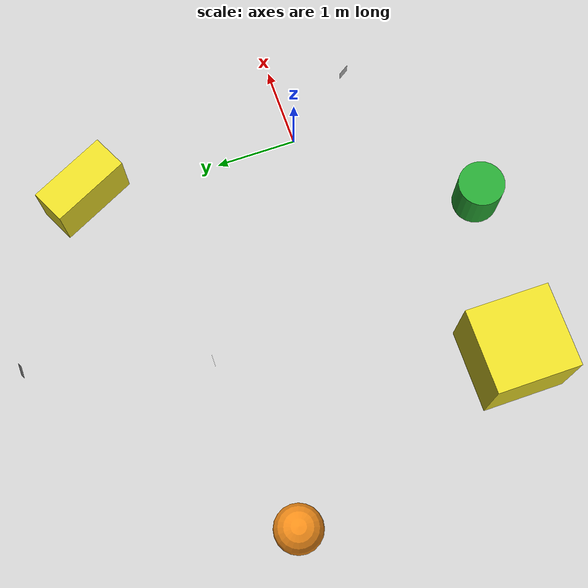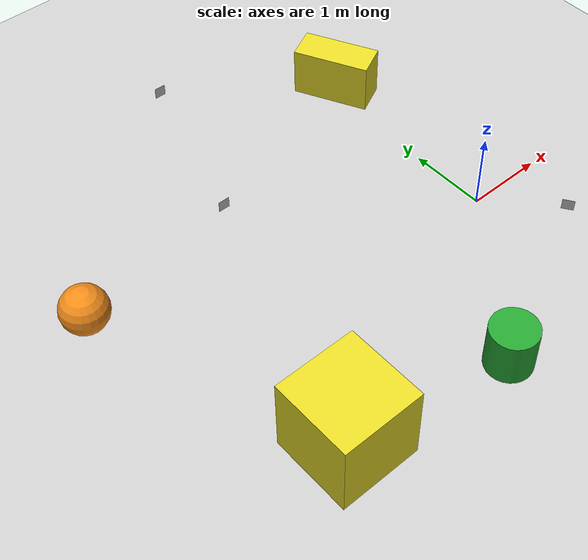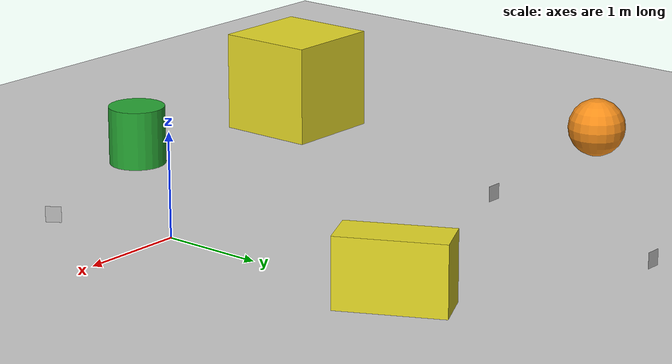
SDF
<sdf version="1.6">
 <world name="default">
  <model name="ground_plane">
   <static>1</static>
   <link name="link">
    <collision name="collision">
     <geometry><plane><normal>0 0 1</normal><size>100 100</size></plane></geometry>
     <surface><friction><ode><mu>100</mu><mu2>50</mu2></ode></friction></surface>
    </collision>
    <visual name="visual">
     <cast_shadows>0</cast_shadows>
     <geometry><plane><normal>0 0 1</normal><size>100 100</size></plane></geometry>
     <material>
      <script><uri>file://media/materials/scripts/gazebo.material</uri><name>Gazebo/Grey</name></script>
     </material>
    </visual>
   </link>
  </model>
  <model name="unit_cylinder_clone">
   <link name="link">
    <inertial>
     <mass>1</mass>
     <inertia><ixx>0.145833</ixx><ixy>0</ixy><ixz>0</ixz><iyy>0.145833</iyy><iyz>0</iyz><izz>0.125</izz></inertia>
    </inertial>
    <visual name="visual">
     <geometry><cylinder><radius>0.282119</radius><length>0.585064</length></cylinder></geometry>
     <material>
      <script><name>Gazebo/Green</name><uri>file://media/materials/scripts/gazebo.material</uri></script>
      <shader type="pixel"><normal_map>__default__</normal_map></shader>
      <ambient>0 1 0 1</ambient>
      <diffuse>0 1 0 1</diffuse>
      <specular>0.1 0.1 0.1 1</specular>
      <emissive>0 0 0 1</emissive>
     </material>
    </visual>
    <collision name="collision">
     <geometry><cylinder><radius>0.282119</radius><length>0.585064</length></cylinder></geometry>
     <surface>
      <friction>
       <ode><mu>1</mu><mu2>1</mu2><fdir1>0 0 0</fdir1><slip1>0</slip1><slip2>0</slip2></ode>
       <torsional>
        <coefficient>1</coefficient>
        <patch_radius>0</patch_radius>
        <surface_radius>0</surface_radius>
        <use_patch_radius>1</use_patch_radius>
        <ode><slip>0</slip></ode>
       </torsional>
      </friction>
      <bounce><restitution_coefficient>0</restitution_coefficient><threshold>1e+06</threshold></bounce>
      <contact>
       <collide_without_contact>0</collide_without_contact>
       <collide_without_contact_bitmask>1</collide_without_contact_bitmask>
       <collide_bitmask>1</collide_bitmask>
       <ode>
        <soft_cfm>0</soft_cfm>
        <soft_erp>0.2</soft_erp>
        <kp>1e+13</kp>
        <kd>1</kd>
        <max_vel>0.01</max_vel>
        <min_depth>0</min_depth>
       </ode>
       <bullet>
        <split_impulse>1</split_impulse>
        <split_impulse_penetration_threshold>-0.01</split_impulse_penetration_threshold>
        <soft_cfm>0</soft_cfm>
        <soft_erp>0.2</soft_erp>
        <kp>1e+13</kp>
        <kd>1</kd>
       </bullet>
      </contact>
     </surface>
    </collision>
   </link>
   <static>0</static>
   <pose>-1.48985 -1.86437 0.292529 1e-06 1e-06 0</pose>
  </model>
  <model name="aruco_marker_0">
   <static>0</static>
   <link name="link">
    <gravity>0</gravity>
    <inertial>
     <mass>0.001</mass>
     <inertia>
      <ixx>3.75e-06</ixx>
      <ixy>0</ixy>
      <ixz>0</ixz>
      <iyy>1.875e-06</iyy>
      <iyz>0</iyz>
      <izz>1.875e-06</izz>
     </inertia>
    </inertial>
    <visual name="front_visual">
     <pose>5e-05 0 0 0 -0 0</pose>
     <geometry><box><size>0.0001 0.15 0.15</size></box></geometry>
     <material>
      <script>
       <uri>model://aruco_marker_0/materials/scripts</uri>
       <uri>model://aruco_marker_0/materials/textures</uri>
       <name>aruco_marker_0</name>
      </script>
     </material>
    </visual>
    <visual name="rear_visual">
     <pose>-5e-05 0 0 0 -0 0</pose>
     <geometry><box><size>0.0001 0.15 0.15</size></box></geometry>
    </visual>
    <collision name="collision"><geometry><box><size>0.0001 0.15 0.15</size></box></geometry></collision>
   </link>
   <pose>-1.80731 4 0.2 0 0 -1.5707</pose>
  </model>
  <model name="aruco_marker_1">
   <static>0</static>
   <link name="link">
    <gravity>0</gravity>
    <inertial>
     <mass>0.001</mass>
     <inertia>
      <ixx>3.75e-06</ixx>
      <ixy>0</ixy>
      <ixz>0</ixz>
      <iyy>1.875e-06</iyy>
      <iyz>0</iyz>
      <izz>1.875e-06</izz>
     </inertia>
    </inertial>
    <visual name="front_visual">
     <pose>5e-05 0 0 0 -0 0</pose>
     <geometry><box><size>0.0001 0.15 0.15</size></box></geometry>
     <material>
      <script>
       <uri>model://aruco_marker_1/materials/scripts</uri>
       <uri>model://aruco_marker_1/materials/textures</uri>
       <name>aruco_marker_1</name>
      </script>
     </material>
    </visual>
    <visual name="rear_visual">
     <pose>-5e-05 0 0 0 -0 0</pose>
     <geometry><box><size>0.0001 0.15 0.15</size></box></geometry>
    </visual>
    <collision name="collision"><geometry><box><size>0.0001 0.15 0.15</size></box></geometry></collision>
   </link>
   <pose>-2.44281 1.83165 0.2 0 0 -1.5707</pose>
  </model>
  <model name="aruco_marker_3">
   <static>0</static>
   <link name="link">
    <gravity>0</gravity>
    <inertial>
     <mass>0.001</mass>
     <inertia>
      <ixx>3.75e-06</ixx>
      <ixy>0</ixy>
      <ixz>0</ixz>
      <iyy>1.875e-06</iyy>
      <iyz>0</iyz>
      <izz>1.875e-06</izz>
     </inertia>
    </inertial>
    <visual name="front_visual">
     <pose>5e-05 0 0 0 -0 0</pose>
     <geometry><box><size>0.0001 0.15 0.15</size></box></geometry>
     <material>
      <script>
       <uri>model://aruco_marker_3/materials/scripts</uri>
       <uri>model://aruco_marker_3/materials/textures</uri>
       <name>aruco_marker_3</name>
      </script>
     </material>
    </visual>
    <visual name="rear_visual">
     <pose>-5e-05 0 0 0 -0 0</pose>
     <geometry><box><size>0.0001 0.15 0.15</size></box></geometry>
    </visual>
    <collision name="collision"><geometry><box><size>0.0001 0.15 0.15</size></box></geometry></collision>
   </link>
   <pose>0.618445 -0.878635 0.2 0 0 -2.56707</pose>
  </model>
  <model name="unit_box">
   <link name="link">
    <inertial>
     <mass>1</mass>
     <inertia>
      <ixx>0.166667</ixx>
      <ixy>0</ixy>
      <ixz>0</ixz>
      <iyy>0.166667</iyy>
      <iyz>0</iyz>
      <izz>0.166667</izz>
     </inertia>
    </inertial>
    <visual name="visual">
     <geometry><box><size>1 1 1</size></box></geometry>
     <material>
      <script><name>Gazebo/Yellow</name><uri>file://media/materials/scripts/gazebo.material</uri></script>
      <shader type="pixel"><normal_map>__default__</normal_map></shader>
      <ambient>1 1 0 1</ambient>
      <diffuse>1 1 0 1</diffuse>
      <emissive>0 0 0 1</emissive>
     </material>
    </visual>
    <collision name="collision">
     <geometry><box><size>1 1 1</size></box></geometry>
     <surface>
      <friction>
       <ode><mu>1</mu><mu2>1</mu2><fdir1>0 0 0</fdir1><slip1>0</slip1><slip2>0</slip2></ode>
       <torsional>
        <coefficient>1</coefficient>
        <patch_radius>0</patch_radius>
        <surface_radius>0</surface_radius>
        <use_patch_radius>1</use_patch_radius>
        <ode><slip>0</slip></ode>
       </torsional>
      </friction>
      <bounce><restitution_coefficient>0</restitution_coefficient><threshold>1e+06</threshold></bounce>
      <contact>
       <collide_without_contact>0</collide_without_contact>
       <collide_without_contact_bitmask>1</collide_without_contact_bitmask>
       <collide_bitmask>1</collide_bitmask>
       <ode>
        <soft_cfm>0</soft_cfm>
        <soft_erp>0.2</soft_erp>
        <kp>1e+13</kp>
        <kd>1</kd>
        <max_vel>0.01</max_vel>
        <min_depth>0</min_depth>
       </ode>
       <bullet>
        <split_impulse>1</split_impulse>
        <split_impulse_penetration_threshold>-0.01</split_impulse_penetration_threshold>
        <soft_cfm>0</soft_cfm>
        <soft_erp>0.2</soft_erp>
        <kp>1e+13</kp>
        <kd>1</kd>
       </bullet>
      </contact>
     </surface>
    </collision>
   </link>
   <static>0</static>
   <pose>-3.48746 -1.49432 0.5 -0 -0 -0</pose>
  </model>
  <model name="unit_box_clone">
   <link name="link">
    <inertial>
     <mass>1</mass>
     <inertia>
      <ixx>0.166667</ixx>
      <ixy>0</ixy>
      <ixz>0</ixz>
      <iyy>0.166667</iyy>
      <iyz>0</iyz>
      <izz>0.166667</izz>
     </inertia>
    </inertial>
    <visual name="visual">
     <geometry><box><size>1 0.436961 0.656537</size></box></geometry>
     <material>
      <script><name>Gazebo/Yellow</name><uri>file://media/materials/scripts/gazebo.material</uri></script>
      <shader type="pixel"><normal_map>__default__</normal_map></shader>
      <ambient>1 1 0 1</ambient>
      <diffuse>1 1 0 1</diffuse>
      <emissive>0 0 0 1</emissive>
     </material>
    </visual>
    <collision name="collision">
     <geometry><box><size>1 0.436961 0.656537</size></box></geometry>
     <surface>
      <friction>
       <ode><mu>1</mu><mu2>1</mu2><fdir1>0 0 0</fdir1><slip1>0</slip1><slip2>0</slip2></ode>
       <torsional>
        <coefficient>1</coefficient>
        <patch_radius>0</patch_radius>
        <surface_radius>0</surface_radius>
        <use_patch_radius>1</use_patch_radius>
        <ode><slip>0</slip></ode>
       </torsional>
      </friction>
      <bounce><restitution_coefficient>0</restitution_coefficient><threshold>1e+06</threshold></bounce>
      <contact>
       <collide_without_contact>0</collide_without_contact>
       <collide_without_contact_bitmask>1</collide_without_contact_bitmask>
       <collide_bitmask>1</collide_bitmask>
       <ode>
        <soft_cfm>0</soft_cfm>
        <soft_erp>0.2</soft_erp>
        <kp>1e+13</kp>
        <kd>1</kd>
        <max_vel>0.01</max_vel>
        <min_depth>0</min_depth>
       </ode>
       <bullet>
        <split_impulse>1</split_impulse>
        <split_impulse_penetration_threshold>-0.01</split_impulse_penetration_threshold>
        <soft_cfm>0</soft_cfm>
        <soft_erp>0.2</soft_erp>
        <kp>1e+13</kp>
        <kd>1</kd>
       </bullet>
      </contact>
     </surface>
    </collision>
   </link>
   <static>0</static>
   <pose>0.099379 2.67313 0.328268 0 -0 2.03126</pose>
  </model>
  <model name="unit_sphere_clone">
   <link name="link">
    <inertial>
     <mass>1</mass>
     <inertia><ixx>0.1</ixx><ixy>0</ixy><ixz>0</ixz><iyy>0.1</iyy><iyz>0</iyz><izz>0.1</izz></inertia>
    </inertial>
    <visual name="visual">
     <geometry><sphere><radius>0.291395</radius></sphere></geometry>
     <material>
      <script><name>Gazebo/Orange</name><uri>file://media/materials/scripts/gazebo.material</uri></script>
      <shader type="pixel"><normal_map>__default__</normal_map></shader>
      <ambient>1 0.509 0.047 1</ambient>
      <diffuse>1 0.509 0.047 1</diffuse>
      <specular>0.5 0.5 0.5 1</specular>
      <emissive>0 0 0 1</emissive>
     </material>
    </visual>
    <collision name="collision">
     <geometry><sphere><radius>0.291395</radius></sphere></geometry>
     <surface>
      <friction>
       <ode><mu>1</mu><mu2>1</mu2><fdir1>0 0 0</fdir1><slip1>0</slip1><slip2>0</slip2></ode>
       <torsional>
        <coefficient>1</coefficient>
        <patch_radius>0</patch_radius>
        <surface_radius>0</surface_radius>
        <use_patch_radius>1</use_patch_radius>
        <ode><slip>0</slip></ode>
       </torsional>
      </friction>
      <bounce><restitution_coefficient>0</restitution_coefficient><threshold>1e+06</threshold></bounce>
      <contact>
       <collide_without_contact>0</collide_without_contact>
       <collide_without_contact_bitmask>1</collide_without_contact_bitmask>
       <collide_bitmask>1</collide_bitmask>
       <ode>
        <soft_cfm>0</soft_cfm>
        <soft_erp>0.2</soft_erp>
        <kp>1e+13</kp>
        <kd>1</kd>
        <max_vel>0.01</max_vel>
        <min_depth>0</min_depth>
       </ode>
       <bullet>
        <split_impulse>1</split_impulse>
        <split_impulse_penetration_threshold>-0.01</split_impulse_penetration_threshold>
        <soft_cfm>0</soft_cfm>
        <soft_erp>0.2</soft_erp>
        <kp>1e+13</kp>
        <kd>1</kd>
       </bullet>
      </contact>
     </surface>
    </collision>
   </link>
   <static>0</static>
   <pose>-4.59295 1.52432 0.291395 0 -0 0</pose>
  </model>
 </world>
</sdf>
